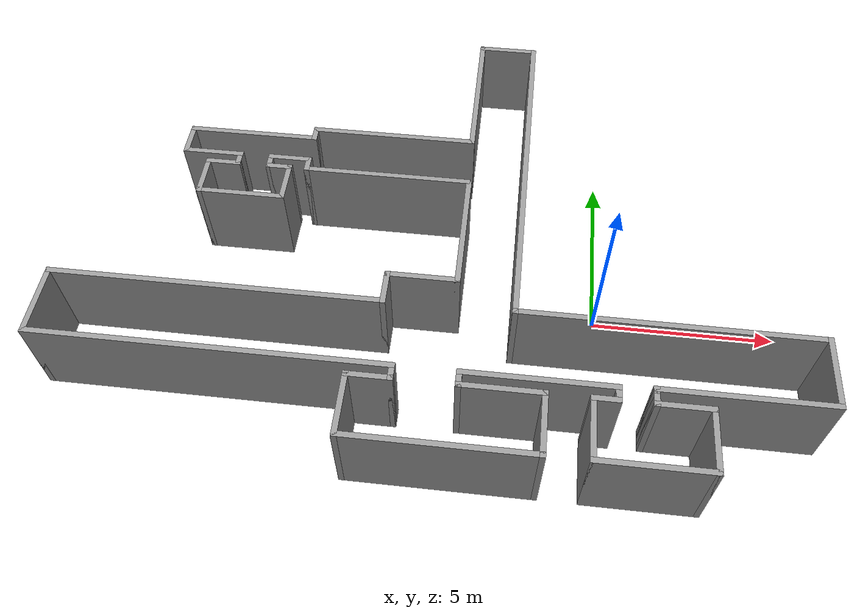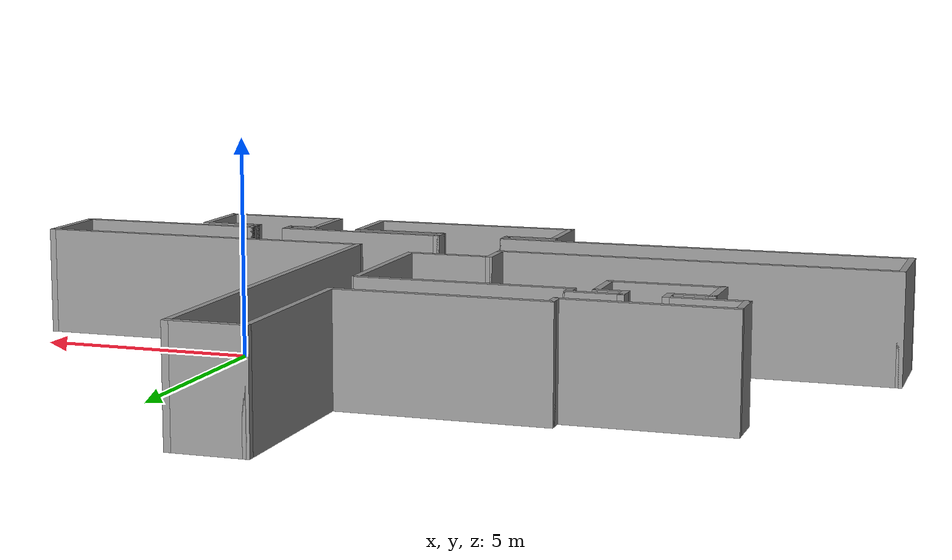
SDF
<?xml version='1.0'?>
<sdf version='1.7'>
  <model name='floor_test'>
    <pose>-4.44655 1.60097 0 0 -0 0</pose>
    <link name='Wall_0'>
      <collision name='Wall_0_Collision'>
        <geometry>
          <box>
            <size>9.5 0.15 2.5</size>
          </box>
        </geometry>
        <pose>0 0 1.25 0 -0 0</pose>
      </collision>
      <visual name='Wall_0_Visual'>
        <pose>0 0 1.25 0 -0 0</pose>
        <geometry>
          <box>
            <size>9.5 0.15 2.5</size>
          </box>
        </geometry>
        <material>
          <script>
            <uri>file://media/materials/scripts/gazebo.material</uri>
            <name>Gazebo/Grey</name>
          </script>
          <ambient>1 1 1 1</ambient>
        </material>
        <meta>
          <layer>0</layer>
        </meta>
      </visual>
      <pose>-5.375 -4.9 0 0 -0 0</pose>
    </link>
    <link name='Wall_1'>
      <collision name='Wall_1_Collision'>
        <geometry>
          <box>
            <size>0.5 0.15 2.5</size>
          </box>
        </geometry>
        <pose>0 0 1.25 0 -0 0</pose>
      </collision>
      <visual name='Wall_1_Visual'>
        <pose>0 0 1.25 0 -0 0</pose>
        <geometry>
          <box>
            <size>0.5 0.15 2.5</size>
          </box>
        </geometry>
        <material>
          <script>
            <uri>file://media/materials/scripts/gazebo.material</uri>
            <name>Gazebo/Grey</name>
          </script>
          <ambient>1 1 1 1</ambient>
        </material>
        <meta>
          <layer>0</layer>
        </meta>
      </visual>
      <pose>-0.7 -5.075 0 0 -0 -1.5708</pose>
    </link>
    <link name='Wall_10'>
      <collision name='Wall_10_Collision'>
        <geometry>
          <box>
            <size>0.75 0.15 2.5</size>
          </box>
        </geometry>
        <pose>0 0 1.25 0 -0 0</pose>
      </collision>
      <visual name='Wall_10_Visual'>
        <pose>0 0 1.25 0 -0 0</pose>
        <geometry>
          <box>
            <size>0.75 0.15 2.5</size>
          </box>
        </geometry>
        <material>
          <script>
            <uri>file://media/materials/scripts/gazebo.material</uri>
            <name>Gazebo/Grey</name>
          </script>
          <ambient>1 1 1 1</ambient>
        </material>
        <meta>
          <layer>0</layer>
        </meta>
      </visual>
      <pose>4.5 -5.25 0 0 -0 3.14159</pose>
    </link>
    <link name='Wall_11'>
      <collision name='Wall_11_Collision'>
        <geometry>
          <box>
            <size>1.75 0.15 2.5</size>
          </box>
        </geometry>
        <pose>0 0 1.25 0 -0 0</pose>
      </collision>
      <visual name='Wall_11_Visual'>
        <pose>0 0 1.25 0 -0 0</pose>
        <geometry>
          <box>
            <size>1.75 0.15 2.5</size>
          </box>
        </geometry>
        <material>
          <script>
            <uri>file://media/materials/scripts/gazebo.material</uri>
            <name>Gazebo/Grey</name>
          </script>
          <ambient>1 1 1 1</ambient>
        </material>
        <meta>
          <layer>0</layer>
        </meta>
      </visual>
      <pose>4.2 -6.05 0 0 -0 -1.5708</pose>
    </link>
    <link name='Wall_12'>
      <collision name='Wall_12_Collision'>
        <geometry>
          <box>
            <size>3 0.15 2.5</size>
          </box>
        </geometry>
        <pose>0 0 1.25 0 -0 0</pose>
      </collision>
      <visual name='Wall_12_Visual'>
        <pose>0 0 1.25 0 -0 0</pose>
        <geometry>
          <box>
            <size>3 0.15 2.5</size>
          </box>
        </geometry>
        <material>
          <script>
            <uri>file://media/materials/scripts/gazebo.material</uri>
            <name>Gazebo/Grey</name>
          </script>
          <ambient>1 1 1 1</ambient>
        </material>
        <meta>
          <layer>0</layer>
        </meta>
      </visual>
      <pose>5.625 -6.85 0 0 -0 0</pose>
    </link>
    <link name='Wall_13'>
      <collision name='Wall_13_Collision'>
        <geometry>
          <box>
            <size>1.75 0.15 2.5</size>
          </box>
        </geometry>
        <pose>0 0 1.25 0 -0 0</pose>
      </collision>
      <visual name='Wall_13_Visual'>
        <pose>0 0 1.25 0 -0 0</pose>
        <geometry>
          <box>
            <size>1.75 0.15 2.5</size>
          </box>
        </geometry>
        <material>
          <script>
            <uri>file://media/materials/scripts/gazebo.material</uri>
            <name>Gazebo/Grey</name>
          </script>
          <ambient>1 1 1 1</ambient>
        </material>
        <meta>
          <layer>0</layer>
        </meta>
      </visual>
      <pose>7.05 -6.05 0 0 -0 1.5708</pose>
    </link>
    <link name='Wall_14'>
      <collision name='Wall_14_Collision'>
        <geometry>
          <box>
            <size>1.5 0.15 2.5</size>
          </box>
        </geometry>
        <pose>0 0 1.25 0 -0 0</pose>
      </collision>
      <visual name='Wall_14_Visual'>
        <pose>0 0 1.25 0 -0 0</pose>
        <geometry>
          <box>
            <size>1.5 0.15 2.5</size>
          </box>
        </geometry>
        <material>
          <script>
            <uri>file://media/materials/scripts/gazebo.material</uri>
            <name>Gazebo/Grey</name>
          </script>
          <ambient>1 1 1 1</ambient>
        </material>
        <meta>
          <layer>0</layer>
        </meta>
      </visual>
      <pose>6.375 -5.25 0 0 -0 3.14159</pose>
    </link>
    <link name='Wall_15'>
      <collision name='Wall_15_Collision'>
        <geometry>
          <box>
            <size>0.25 0.15 2.5</size>
          </box>
        </geometry>
        <pose>0 0 1.25 0 -0 0</pose>
      </collision>
      <visual name='Wall_15_Visual'>
        <pose>0 0 1.25 0 -0 0</pose>
        <geometry>
          <box>
            <size>0.25 0.15 2.5</size>
          </box>
        </geometry>
        <material>
          <script>
            <uri>file://media/materials/scripts/gazebo.material</uri>
            <name>Gazebo/Grey</name>
          </script>
          <ambient>1 1 1 1</ambient>
        </material>
        <meta>
          <layer>0</layer>
        </meta>
      </visual>
      <pose>5.7 -5.2 0 0 -0 1.5708</pose>
    </link>
    <link name='Wall_16'>
      <collision name='Wall_16_Collision'>
        <geometry>
          <box>
            <size>0.25 0.15 2.5</size>
          </box>
        </geometry>
        <pose>0 0 1.25 0 -0 0</pose>
      </collision>
      <visual name='Wall_16_Visual'>
        <pose>0 0 1.25 0 -0 0</pose>
        <geometry>
          <box>
            <size>0.25 0.15 2.5</size>
          </box>
        </geometry>
        <material>
          <script>
            <uri>file://media/materials/scripts/gazebo.material</uri>
            <name>Gazebo/Grey</name>
          </script>
          <ambient>1 1 1 1</ambient>
        </material>
        <meta>
          <layer>0</layer>
        </meta>
      </visual>
      <pose>5.7 -5.1 0 0 -0 1.5708</pose>
    </link>
    <link name='Wall_17'>
      <collision name='Wall_17_Collision'>
        <geometry>
          <box>
            <size>0.25 0.15 2.5</size>
          </box>
        </geometry>
        <pose>0 0 1.25 0 -0 0</pose>
      </collision>
      <visual name='Wall_17_Visual'>
        <pose>0 0 1.25 0 -0 0</pose>
        <geometry>
          <box>
            <size>0.25 0.15 2.5</size>
          </box>
        </geometry>
        <material>
          <script>
            <uri>file://media/materials/scripts/gazebo.material</uri>
            <name>Gazebo/Grey</name>
          </script>
          <ambient>1 1 1 1</ambient>
        </material>
        <meta>
          <layer>0</layer>
        </meta>
      </visual>
      <pose>5.7 -5 0 0 -0 1.5708</pose>
    </link>
    <link name='Wall_18'>
      <collision name='Wall_18_Collision'>
        <geometry>
          <box>
            <size>0.25 0.15 2.5</size>
          </box>
        </geometry>
        <pose>0 0 1.25 0 -0 0</pose>
      </collision>
      <visual name='Wall_18_Visual'>
        <pose>0 0 1.25 0 -0 0</pose>
        <geometry>
          <box>
            <size>0.25 0.15 2.5</size>
          </box>
        </geometry>
        <material>
          <script>
            <uri>file://media/materials/scripts/gazebo.material</uri>
            <name>Gazebo/Grey</name>
          </script>
          <ambient>1 1 1 1</ambient>
        </material>
        <meta>
          <layer>0</layer>
        </meta>
      </visual>
      <pose>5.7 -4.9 0 0 -0 1.5708</pose>
    </link>
    <link name='Wall_19'>
      <collision name='Wall_19_Collision'>
        <geometry>
          <box>
            <size>4.5 0.15 2.5</size>
          </box>
        </geometry>
        <pose>0 0 1.25 0 -0 0</pose>
      </collision>
      <visual name='Wall_19_Visual'>
        <pose>0 0 1.25 0 -0 0</pose>
        <geometry>
          <box>
            <size>4.5 0.15 2.5</size>
          </box>
        </geometry>
        <material>
          <script>
            <uri>file://media/materials/scripts/gazebo.material</uri>
            <name>Gazebo/Grey</name>
          </script>
          <ambient>1 1 1 1</ambient>
        </material>
        <meta>
          <layer>0</layer>
        </meta>
      </visual>
      <pose>7.875 -4.85 0 0 -0 0</pose>
    </link>
    <link name='Wall_2'>
      <collision name='Wall_2_Collision'>
        <geometry>
          <box>
            <size>1.25 0.15 2.5</size>
          </box>
        </geometry>
        <pose>0 0 1.25 0 -0 0</pose>
      </collision>
      <visual name='Wall_2_Visual'>
        <pose>0 0 1.25 0 -0 0</pose>
        <geometry>
          <box>
            <size>1.25 0.15 2.5</size>
          </box>
        </geometry>
        <material>
          <script>
            <uri>file://media/materials/scripts/gazebo.material</uri>
            <name>Gazebo/Grey</name>
          </script>
          <ambient>1 1 1 1</ambient>
        </material>
        <meta>
          <layer>0</layer>
        </meta>
      </visual>
      <pose>-1.25 -5.25 0 0 -0 3.14159</pose>
    </link>
    <link name='Wall_20'>
      <collision name='Wall_20_Collision'>
        <geometry>
          <box>
            <size>2 0.15 2.5</size>
          </box>
        </geometry>
        <pose>0 0 1.25 0 -0 0</pose>
      </collision>
      <visual name='Wall_20_Visual'>
        <pose>0 0 1.25 0 -0 0</pose>
        <geometry>
          <box>
            <size>2 0.15 2.5</size>
          </box>
        </geometry>
        <material>
          <script>
            <uri>file://media/materials/scripts/gazebo.material</uri>
            <name>Gazebo/Grey</name>
          </script>
          <ambient>1 1 1 1</ambient>
        </material>
        <meta>
          <layer>0</layer>
        </meta>
      </visual>
      <pose>10.05 -3.925 0 0 -0 1.5708</pose>
    </link>
    <link name='Wall_21'>
      <collision name='Wall_21_Collision'>
        <geometry>
          <box>
            <size>8 0.15 2.5</size>
          </box>
        </geometry>
        <pose>0 0 1.25 0 -0 0</pose>
      </collision>
      <visual name='Wall_21_Visual'>
        <pose>0 0 1.25 0 -0 0</pose>
        <geometry>
          <box>
            <size>8 0.15 2.5</size>
          </box>
        </geometry>
        <material>
          <script>
            <uri>file://media/materials/scripts/gazebo.material</uri>
            <name>Gazebo/Grey</name>
          </script>
          <ambient>1 1 1 1</ambient>
        </material>
        <meta>
          <layer>0</layer>
        </meta>
      </visual>
      <pose>6.125 -3 0 0 -0 3.14159</pose>
    </link>
    <link name='Wall_23'>
      <collision name='Wall_23_Collision'>
        <geometry>
          <box>
            <size>10 0.15 2.5</size>
          </box>
        </geometry>
        <pose>0 0 1.25 0 -0 0</pose>
      </collision>
      <visual name='Wall_23_Visual'>
        <pose>0 0 1.25 0 -0 0</pose>
        <geometry>
          <box>
            <size>10 0.15 2.5</size>
          </box>
        </geometry>
        <material>
          <script>
            <uri>file://media/materials/scripts/gazebo.material</uri>
            <name>Gazebo/Grey</name>
          </script>
          <ambient>1 1 1 1</ambient>
        </material>
        <meta>
          <layer>0</layer>
        </meta>
      </visual>
      <pose>2.2 1.925 0 0 -0 1.5708</pose>
    </link>
    <link name='Wall_24'>
      <collision name='Wall_24_Collision'>
        <geometry>
          <box>
            <size>1.75 0.15 2.5</size>
          </box>
        </geometry>
        <pose>0 0 1.25 0 -0 0</pose>
      </collision>
      <visual name='Wall_24_Visual'>
        <pose>0 0 1.25 0 -0 0</pose>
        <geometry>
          <box>
            <size>1.75 0.15 2.5</size>
          </box>
        </geometry>
        <material>
          <script>
            <uri>file://media/materials/scripts/gazebo.material</uri>
            <name>Gazebo/Grey</name>
          </script>
          <ambient>1 1 1 1</ambient>
        </material>
        <meta>
          <layer>0</layer>
        </meta>
      </visual>
      <pose>1.4 6.85 0 0 -0 3.14159</pose>
    </link>
    <link name='Wall_25'>
      <collision name='Wall_25_Collision'>
        <geometry>
          <box>
            <size>4.25 0.15 2.5</size>
          </box>
        </geometry>
        <pose>0 0 1.25 0 -0 0</pose>
      </collision>
      <visual name='Wall_25_Visual'>
        <pose>0 0 1.25 0 -0 0</pose>
        <geometry>
          <box>
            <size>4.25 0.15 2.5</size>
          </box>
        </geometry>
        <material>
          <script>
            <uri>file://media/materials/scripts/gazebo.material</uri>
            <name>Gazebo/Grey</name>
          </script>
          <ambient>1 1 1 1</ambient>
        </material>
        <meta>
          <layer>0</layer>
        </meta>
      </visual>
      <pose>0.6 4.8 0 0 -0 -1.5708</pose>
    </link>
    <link name='Wall_26'>
      <collision name='Wall_26_Collision'>
        <geometry>
          <box>
            <size>4.75 0.15 2.5</size>
          </box>
        </geometry>
        <pose>0 0 1.25 0 -0 0</pose>
      </collision>
      <visual name='Wall_26_Visual'>
        <pose>0 0 1.25 0 -0 0</pose>
        <geometry>
          <box>
            <size>4.75 0.15 2.5</size>
          </box>
        </geometry>
        <material>
          <script>
            <uri>file://media/materials/scripts/gazebo.material</uri>
            <name>Gazebo/Grey</name>
          </script>
          <ambient>1 1 1 1</ambient>
        </material>
        <meta>
          <layer>0</layer>
        </meta>
      </visual>
      <pose>-1.7 2.75 0 0 -0 3.14159</pose>
    </link>
    <link name='Wall_28'>
      <collision name='Wall_28_Collision'>
        <geometry>
          <box>
            <size>0.5 0.15 2.5</size>
          </box>
        </geometry>
        <pose>0 0 1.25 0 -0 0</pose>
      </collision>
      <visual name='Wall_28_Visual'>
        <pose>0 0 1.25 0 -0 0</pose>
        <geometry>
          <box>
            <size>0.5 0.15 2.5</size>
          </box>
        </geometry>
        <material>
          <script>
            <uri>file://media/materials/scripts/gazebo.material</uri>
            <name>Gazebo/Grey</name>
          </script>
          <ambient>1 1 1 1</ambient>
        </material>
        <meta>
          <layer>0</layer>
        </meta>
      </visual>
      <pose>-4 2.575 0 0 -0 -1.5708</pose>
    </link>
    <link name='Wall_29'>
      <collision name='Wall_29_Collision'>
        <geometry>
          <box>
            <size>3.75 0.15 2.5</size>
          </box>
        </geometry>
        <pose>0 0 1.25 0 -0 0</pose>
      </collision>
      <visual name='Wall_29_Visual'>
        <pose>0 0 1.25 0 -0 0</pose>
        <geometry>
          <box>
            <size>3.75 0.15 2.5</size>
          </box>
        </geometry>
        <material>
          <script>
            <uri>file://media/materials/scripts/gazebo.material</uri>
            <name>Gazebo/Grey</name>
          </script>
          <ambient>1 1 1 1</ambient>
        </material>
        <meta>
          <layer>0</layer>
        </meta>
      </visual>
      <pose>-5.8 2.4 0 0 -0 3.14159</pose>
    </link>
    <link name='Wall_3'>
      <collision name='Wall_3_Collision'>
        <geometry>
          <box>
            <size>1.75 0.15 2.5</size>
          </box>
        </geometry>
        <pose>0 0 1.25 0 -0 0</pose>
      </collision>
      <visual name='Wall_3_Visual'>
        <pose>0 0 1.25 0 -0 0</pose>
        <geometry>
          <box>
            <size>1.75 0.15 2.5</size>
          </box>
        </geometry>
        <material>
          <script>
            <uri>file://media/materials/scripts/gazebo.material</uri>
            <name>Gazebo/Grey</name>
          </script>
          <ambient>1 1 1 1</ambient>
        </material>
        <meta>
          <layer>0</layer>
        </meta>
      </visual>
      <pose>-1.8 -6.05 0 0 -0 -1.5708</pose>
    </link>
    <link name='Wall_30'>
      <collision name='Wall_30_Collision'>
        <geometry>
          <box>
            <size>1 0.15 2.5</size>
          </box>
        </geometry>
        <pose>0 0 1.25 0 -0 0</pose>
      </collision>
      <visual name='Wall_30_Visual'>
        <pose>0 0 1.25 0 -0 0</pose>
        <geometry>
          <box>
            <size>1 0.15 2.5</size>
          </box>
        </geometry>
        <material>
          <script>
            <uri>file://media/materials/scripts/gazebo.material</uri>
            <name>Gazebo/Grey</name>
          </script>
          <ambient>1 1 1 1</ambient>
        </material>
        <meta>
          <layer>0</layer>
        </meta>
      </visual>
      <pose>-7.6 1.975 0 0 -0 -1.5708</pose>
    </link>
    <link name='Wall_31'>
      <collision name='Wall_31_Collision'>
        <geometry>
          <box>
            <size>1.75 0.15 2.5</size>
          </box>
        </geometry>
        <pose>0 0 1.25 0 -0 0</pose>
      </collision>
      <visual name='Wall_31_Visual'>
        <pose>0 0 1.25 0 -0 0</pose>
        <geometry>
          <box>
            <size>1.75 0.15 2.5</size>
          </box>
        </geometry>
        <material>
          <script>
            <uri>file://media/materials/scripts/gazebo.material</uri>
            <name>Gazebo/Grey</name>
          </script>
          <ambient>1 1 1 1</ambient>
        </material>
        <meta>
          <layer>0</layer>
        </meta>
      </visual>
      <pose>-6.8 1.55 0 0 -0 0</pose>
    </link>
    <link name='Wall_32'>
      <collision name='Wall_32_Collision'>
        <geometry>
          <box>
            <size>0.5 0.15 2.5</size>
          </box>
        </geometry>
        <pose>0 0 1.25 0 -0 0</pose>
      </collision>
      <visual name='Wall_32_Visual'>
        <pose>0 0 1.25 0 -0 0</pose>
        <geometry>
          <box>
            <size>0.5 0.15 2.5</size>
          </box>
        </geometry>
        <material>
          <script>
            <uri>file://media/materials/scripts/gazebo.material</uri>
            <name>Gazebo/Grey</name>
          </script>
          <ambient>1 1 1 1</ambient>
        </material>
        <meta>
          <layer>0</layer>
        </meta>
      </visual>
      <pose>-6 1.375 0 0 -0 -1.5708</pose>
    </link>
    <link name='Wall_33'>
      <collision name='Wall_33_Collision'>
        <geometry>
          <box>
            <size>1 0.15 2.5</size>
          </box>
        </geometry>
        <pose>0 0 1.25 0 -0 0</pose>
      </collision>
      <visual name='Wall_33_Visual'>
        <pose>0 0 1.25 0 -0 0</pose>
        <geometry>
          <box>
            <size>1 0.15 2.5</size>
          </box>
        </geometry>
        <material>
          <script>
            <uri>file://media/materials/scripts/gazebo.material</uri>
            <name>Gazebo/Grey</name>
          </script>
          <ambient>1 1 1 1</ambient>
        </material>
        <meta>
          <layer>0</layer>
        </meta>
      </visual>
      <pose>-6.425 1.2 0 0 -0 3.14159</pose>
    </link>
    <link name='Wall_34'>
      <collision name='Wall_34_Collision'>
        <geometry>
          <box>
            <size>1.25 0.15 2.5</size>
          </box>
        </geometry>
        <pose>0 0 1.25 0 -0 0</pose>
      </collision>
      <visual name='Wall_34_Visual'>
        <pose>0 0 1.25 0 -0 0</pose>
        <geometry>
          <box>
            <size>1.25 0.15 2.5</size>
          </box>
        </geometry>
        <material>
          <script>
            <uri>file://media/materials/scripts/gazebo.material</uri>
            <name>Gazebo/Grey</name>
          </script>
          <ambient>1 1 1 1</ambient>
        </material>
        <meta>
          <layer>0</layer>
        </meta>
      </visual>
      <pose>-6.85 0.65 0 0 -0 -1.5708</pose>
    </link>
    <link name='Wall_35'>
      <collision name='Wall_35_Collision'>
        <geometry>
          <box>
            <size>2.5 0.15 2.5</size>
          </box>
        </geometry>
        <pose>0 0 1.25 0 -0 0</pose>
      </collision>
      <visual name='Wall_35_Visual'>
        <pose>0 0 1.25 0 -0 0</pose>
        <geometry>
          <box>
            <size>2.5 0.15 2.5</size>
          </box>
        </geometry>
        <material>
          <script>
            <uri>file://media/materials/scripts/gazebo.material</uri>
            <name>Gazebo/Grey</name>
          </script>
          <ambient>1 1 1 1</ambient>
        </material>
        <meta>
          <layer>0</layer>
        </meta>
      </visual>
      <pose>-5.675 0.1 0 0 -0 0</pose>
    </link>
    <link name='Wall_36'>
      <collision name='Wall_36_Collision'>
        <geometry>
          <box>
            <size>1.25 0.15 2.5</size>
          </box>
        </geometry>
        <pose>0 0 1.25 0 -0 0</pose>
      </collision>
      <visual name='Wall_36_Visual'>
        <pose>0 0 1.25 0 -0 0</pose>
        <geometry>
          <box>
            <size>1.25 0.15 2.5</size>
          </box>
        </geometry>
        <material>
          <script>
            <uri>file://media/materials/scripts/gazebo.material</uri>
            <name>Gazebo/Grey</name>
          </script>
          <ambient>1 1 1 1</ambient>
        </material>
        <meta>
          <layer>0</layer>
        </meta>
      </visual>
      <pose>-4.5 0.65 0 0 -0 1.5708</pose>
    </link>
    <link name='Wall_37'>
      <collision name='Wall_37_Collision'>
        <geometry>
          <box>
            <size>0.75 0.15 2.5</size>
          </box>
        </geometry>
        <pose>0 0 1.25 0 -0 0</pose>
      </collision>
      <visual name='Wall_37_Visual'>
        <pose>0 0 1.25 0 -0 0</pose>
        <geometry>
          <box>
            <size>0.75 0.15 2.5</size>
          </box>
        </geometry>
        <material>
          <script>
            <uri>file://media/materials/scripts/gazebo.material</uri>
            <name>Gazebo/Grey</name>
          </script>
          <ambient>1 1 1 1</ambient>
        </material>
        <meta>
          <layer>0</layer>
        </meta>
      </visual>
      <pose>-4.8 1.2 0 0 -0 3.14159</pose>
    </link>
    <link name='Wall_38'>
      <collision name='Wall_38_Collision'>
        <geometry>
          <box>
            <size>0.5 0.15 2.5</size>
          </box>
        </geometry>
        <pose>0 0 1.25 0 -0 0</pose>
      </collision>
      <visual name='Wall_38_Visual'>
        <pose>0 0 1.25 0 -0 0</pose>
        <geometry>
          <box>
            <size>0.5 0.15 2.5</size>
          </box>
        </geometry>
        <material>
          <script>
            <uri>file://media/materials/scripts/gazebo.material</uri>
            <name>Gazebo/Grey</name>
          </script>
          <ambient>1 1 1 1</ambient>
        </material>
        <meta>
          <layer>0</layer>
        </meta>
      </visual>
      <pose>-5.1 1.375 0 0 -0 1.5708</pose>
    </link>
    <link name='Wall_39'>
      <collision name='Wall_39_Collision'>
        <geometry>
          <box>
            <size>1.25 0.15 2.5</size>
          </box>
        </geometry>
        <pose>0 0 1.25 0 -0 0</pose>
      </collision>
      <visual name='Wall_39_Visual'>
        <pose>0 0 1.25 0 -0 0</pose>
        <geometry>
          <box>
            <size>1.25 0.15 2.5</size>
          </box>
        </geometry>
        <material>
          <script>
            <uri>file://media/materials/scripts/gazebo.material</uri>
            <name>Gazebo/Grey</name>
          </script>
          <ambient>1 1 1 1</ambient>
        </material>
        <meta>
          <layer>0</layer>
        </meta>
      </visual>
      <pose>-4.55 1.55 0 0 -0 0</pose>
    </link>
    <link name='Wall_4'>
      <collision name='Wall_4_Collision'>
        <geometry>
          <box>
            <size>5 0.15 2.5</size>
          </box>
        </geometry>
        <pose>0 0 1.25 0 -0 0</pose>
      </collision>
      <visual name='Wall_4_Visual'>
        <pose>0 0 1.25 0 -0 0</pose>
        <geometry>
          <box>
            <size>5 0.15 2.5</size>
          </box>
        </geometry>
        <material>
          <script>
            <uri>file://media/materials/scripts/gazebo.material</uri>
            <name>Gazebo/Grey</name>
          </script>
          <ambient>1 1 1 1</ambient>
        </material>
        <meta>
          <layer>0</layer>
        </meta>
      </visual>
      <pose>0.625 -6.85 0 0 -0 0</pose>
    </link>
    <link name='Wall_40'>
      <collision name='Wall_40_Collision'>
        <geometry>
          <box>
            <size>0.5 0.15 2.5</size>
          </box>
        </geometry>
        <pose>0 0 1.25 0 -0 0</pose>
      </collision>
      <visual name='Wall_40_Visual'>
        <pose>0 0 1.25 0 -0 0</pose>
        <geometry>
          <box>
            <size>0.5 0.15 2.5</size>
          </box>
        </geometry>
        <material>
          <script>
            <uri>file://media/materials/scripts/gazebo.material</uri>
            <name>Gazebo/Grey</name>
          </script>
          <ambient>1 1 1 1</ambient>
        </material>
        <meta>
          <layer>0</layer>
        </meta>
      </visual>
      <pose>-4 1.375 0 0 -0 -1.5708</pose>
    </link>
    <link name='Wall_41'>
      <collision name='Wall_41_Collision'>
        <geometry>
          <box>
            <size>4.75 0.15 2.5</size>
          </box>
        </geometry>
        <pose>0 0 1.25 0 -0 0</pose>
      </collision>
      <visual name='Wall_41_Visual'>
        <pose>0 0 1.25 0 -0 0</pose>
        <geometry>
          <box>
            <size>4.75 0.15 2.5</size>
          </box>
        </geometry>
        <material>
          <script>
            <uri>file://media/materials/scripts/gazebo.material</uri>
            <name>Gazebo/Grey</name>
          </script>
          <ambient>1 1 1 1</ambient>
        </material>
        <meta>
          <layer>0</layer>
        </meta>
      </visual>
      <pose>-1.7 1.2 0 0 -0 0</pose>
    </link>
    <link name='Wall_44'>
      <collision name='Wall_44_Collision'>
        <geometry>
          <box>
            <size>2 0.15 2.5</size>
          </box>
        </geometry>
        <pose>0 0 1.25 0 -0 0</pose>
      </collision>
      <visual name='Wall_44_Visual'>
        <pose>0 0 1.25 0 -0 0</pose>
        <geometry>
          <box>
            <size>2 0.15 2.5</size>
          </box>
        </geometry>
        <material>
          <script>
            <uri>file://media/materials/scripts/gazebo.material</uri>
            <name>Gazebo/Grey</name>
          </script>
          <ambient>1 1 1 1</ambient>
        </material>
        <meta>
          <layer>0</layer>
        </meta>
      </visual>
      <pose>-10.05 -3.975 0 0 -0 1.5708</pose>
    </link>
    <link name='Wall_45'>
      <collision name='Wall_45_Collision'>
        <geometry>
          <box>
            <size>9 0.15 2.5</size>
          </box>
        </geometry>
        <pose>0 0 1.25 0 -0 0</pose>
      </collision>
      <visual name='Wall_45_Visual'>
        <pose>0 0 1.25 0 -0 0</pose>
        <geometry>
          <box>
            <size>9 0.15 2.5</size>
          </box>
        </geometry>
        <material>
          <script>
            <uri>file://media/materials/scripts/gazebo.material</uri>
            <name>Gazebo/Grey</name>
          </script>
          <ambient>1 1 1 1</ambient>
        </material>
        <meta>
          <layer>0</layer>
        </meta>
      </visual>
      <pose>-5.625 -3.05 0 0 -0 0</pose>
    </link>
    <link name='Wall_46'>
      <collision name='Wall_46_Collision'>
        <geometry>
          <box>
            <size>1 0.15 2.5</size>
          </box>
        </geometry>
        <pose>0 0 1.25 0 -0 0</pose>
      </collision>
      <visual name='Wall_46_Visual'>
        <pose>0 0 1.25 0 -0 0</pose>
        <geometry>
          <box>
            <size>1 0.15 2.5</size>
          </box>
        </geometry>
        <material>
          <script>
            <uri>file://media/materials/scripts/gazebo.material</uri>
            <name>Gazebo/Grey</name>
          </script>
          <ambient>1 1 1 1</ambient>
        </material>
        <meta>
          <layer>0</layer>
        </meta>
      </visual>
      <pose>-1.2 -2.625 0 0 -0 1.5708</pose>
    </link>
    <link name='Wall_47'>
      <collision name='Wall_47_Collision'>
        <geometry>
          <box>
            <size>2 0.15 2.5</size>
          </box>
        </geometry>
        <pose>0 0 1.25 0 -0 0</pose>
      </collision>
      <visual name='Wall_47_Visual'>
        <pose>0 0 1.25 0 -0 0</pose>
        <geometry>
          <box>
            <size>2 0.15 2.5</size>
          </box>
        </geometry>
        <material>
          <script>
            <uri>file://media/materials/scripts/gazebo.material</uri>
            <name>Gazebo/Grey</name>
          </script>
          <ambient>1 1 1 1</ambient>
        </material>
        <meta>
          <layer>0</layer>
        </meta>
      </visual>
      <pose>-0.275 -2.2 0 0 -0 0</pose>
    </link>
    <link name='Wall_48'>
      <collision name='Wall_48_Collision'>
        <geometry>
          <box>
            <size>3.5 0.15 2.5</size>
          </box>
        </geometry>
        <pose>0 0 1.25 0 -0 0</pose>
      </collision>
      <visual name='Wall_48_Visual'>
        <pose>0 0 1.25 0 -0 0</pose>
        <geometry>
          <box>
            <size>3.5 0.15 2.5</size>
          </box>
        </geometry>
        <material>
          <script>
            <uri>file://media/materials/scripts/gazebo.material</uri>
            <name>Gazebo/Grey</name>
          </script>
          <ambient>1 1 1 1</ambient>
        </material>
        <meta>
          <layer>0</layer>
        </meta>
      </visual>
      <pose>0.65 -0.525 0 0 -0 1.5708</pose>
    </link>
    <link name='Wall_5'>
      <collision name='Wall_5_Collision'>
        <geometry>
          <box>
            <size>1.75 0.15 2.5</size>
          </box>
        </geometry>
        <pose>0 0 1.25 0 -0 0</pose>
      </collision>
      <visual name='Wall_5_Visual'>
        <pose>0 0 1.25 0 -0 0</pose>
        <geometry>
          <box>
            <size>1.75 0.15 2.5</size>
          </box>
        </geometry>
        <material>
          <script>
            <uri>file://media/materials/scripts/gazebo.material</uri>
            <name>Gazebo/Grey</name>
          </script>
          <ambient>1 1 1 1</ambient>
        </material>
        <meta>
          <layer>0</layer>
        </meta>
      </visual>
      <pose>3.05 -6.05 0 0 -0 1.5708</pose>
    </link>
    <link name='Wall_6'>
      <collision name='Wall_6_Collision'>
        <geometry>
          <box>
            <size>2.25 0.15 2.5</size>
          </box>
        </geometry>
        <pose>0 0 1.25 0 -0 0</pose>
      </collision>
      <visual name='Wall_6_Visual'>
        <pose>0 0 1.25 0 -0 0</pose>
        <geometry>
          <box>
            <size>2.25 0.15 2.5</size>
          </box>
        </geometry>
        <material>
          <script>
            <uri>file://media/materials/scripts/gazebo.material</uri>
            <name>Gazebo/Grey</name>
          </script>
          <ambient>1 1 1 1</ambient>
        </material>
        <meta>
          <layer>0</layer>
        </meta>
      </visual>
      <pose>2 -5.25 0 0 -0 3.14159</pose>
    </link>
    <link name='Wall_7'>
      <collision name='Wall_7_Collision'>
        <geometry>
          <box>
            <size>0.5 0.15 2.5</size>
          </box>
        </geometry>
        <pose>0 0 1.25 0 -0 0</pose>
      </collision>
      <visual name='Wall_7_Visual'>
        <pose>0 0 1.25 0 -0 0</pose>
        <geometry>
          <box>
            <size>0.5 0.15 2.5</size>
          </box>
        </geometry>
        <material>
          <script>
            <uri>file://media/materials/scripts/gazebo.material</uri>
            <name>Gazebo/Grey</name>
          </script>
          <ambient>1 1 1 1</ambient>
        </material>
        <meta>
          <layer>0</layer>
        </meta>
      </visual>
      <pose>0.95 -5.075 0 0 -0 1.5708</pose>
    </link>
    <link name='Wall_8'>
      <collision name='Wall_8_Collision'>
        <geometry>
          <box>
            <size>4 0.15 2.5</size>
          </box>
        </geometry>
        <pose>0 0 1.25 0 -0 0</pose>
      </collision>
      <visual name='Wall_8_Visual'>
        <pose>0 0 1.25 0 -0 0</pose>
        <geometry>
          <box>
            <size>4 0.15 2.5</size>
          </box>
        </geometry>
        <material>
          <script>
            <uri>file://media/materials/scripts/gazebo.material</uri>
            <name>Gazebo/Grey</name>
          </script>
          <ambient>1 1 1 1</ambient>
        </material>
        <meta>
          <layer>0</layer>
        </meta>
      </visual>
      <pose>2.875 -4.9 0 0 -0 0</pose>
    </link>
    <link name='Wall_9'>
      <collision name='Wall_9_Collision'>
        <geometry>
          <box>
            <size>0.5 0.15 2.5</size>
          </box>
        </geometry>
        <pose>0 0 1.25 0 -0 0</pose>
      </collision>
      <visual name='Wall_9_Visual'>
        <pose>0 0 1.25 0 -0 0</pose>
        <geometry>
          <box>
            <size>0.5 0.15 2.5</size>
          </box>
        </geometry>
        <material>
          <script>
            <uri>file://media/materials/scripts/gazebo.material</uri>
            <name>Gazebo/Grey</name>
          </script>
          <ambient>1 1 1 1</ambient>
        </material>
        <meta>
          <layer>0</layer>
        </meta>
      </visual>
      <pose>4.8 -5.075 0 0 -0 -1.5708</pose>
    </link>
    <static>1</static>
  </model>
</sdf>
